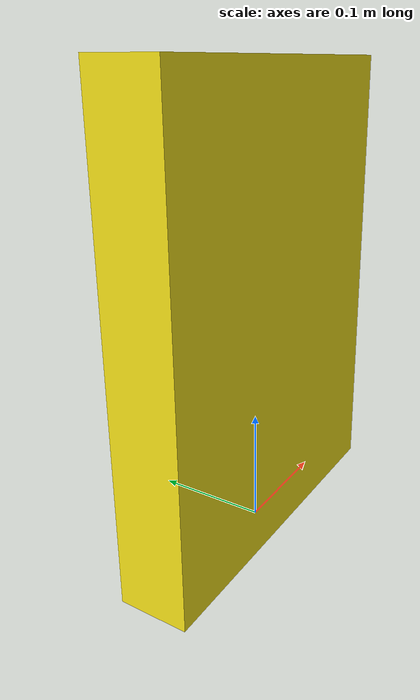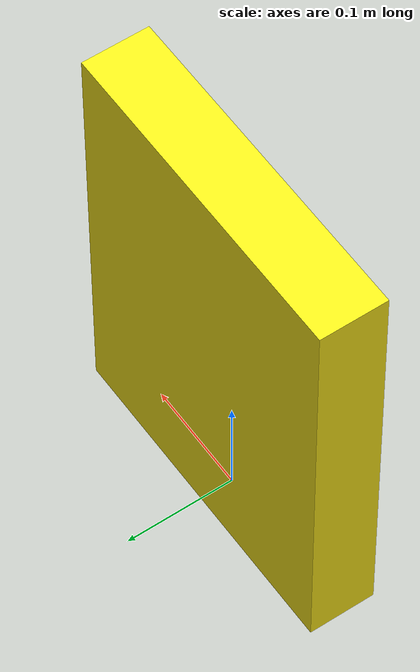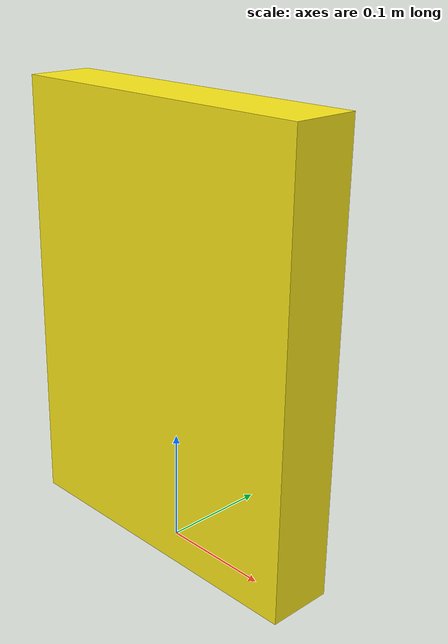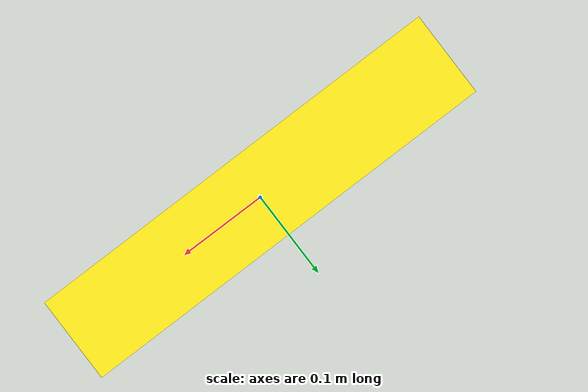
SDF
<?xml version="1.0"?>
<sdf version="1.7">
  <model name="target_towel">
    <static>true</static>
    <link name="link">

      <visual name="visual">
        <pose>0 0 0.20 0 0 0</pose>
        <geometry><box><size>0.30 0.06 0.40</size></box></geometry>
        <material>
          <ambient>0.90 0.85 0.08 1</ambient>
          <diffuse>1.00 0.92 0.10 1</diffuse>
          <specular>0.15 0.15 0.15 1</specular>
        </material>
      </visual>
      <collision name="collision">
        <pose>0 0 0.20 0 0 0</pose>
        <geometry><box><size>0.30 0.06 0.40</size></box></geometry>
      </collision>

    </link>
  </model>
</sdf>
